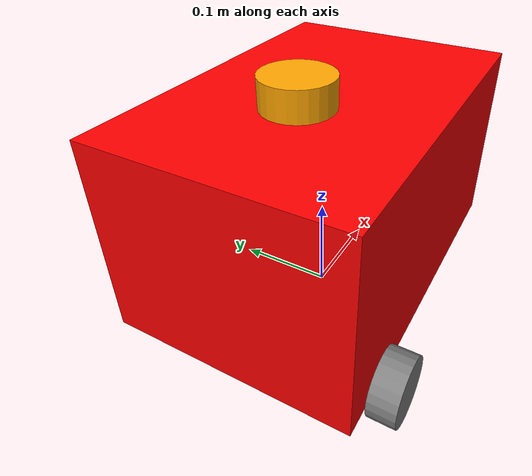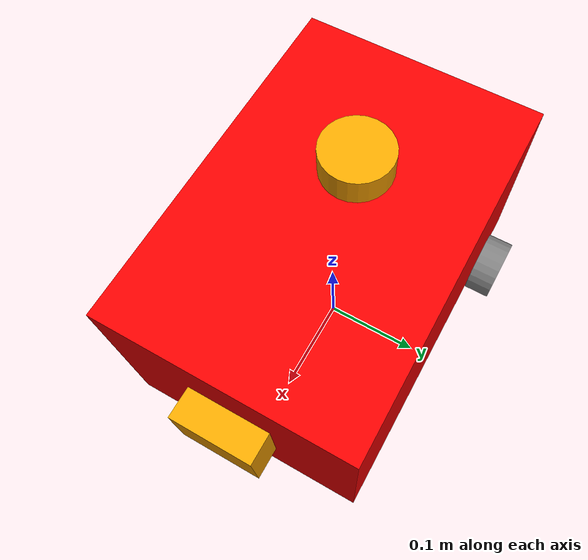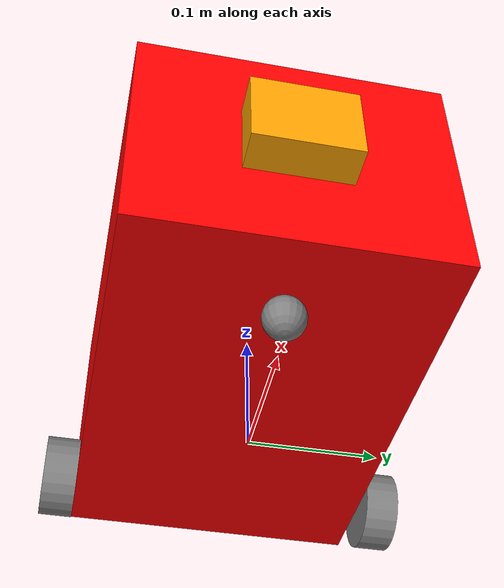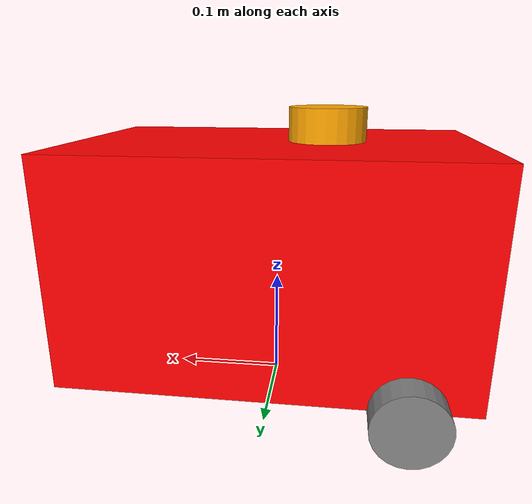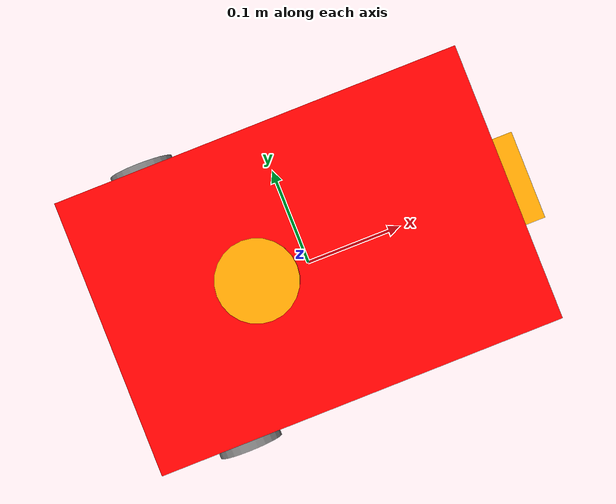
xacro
<?xml version="1.0"?>
<robot name="denis" xmlns:xacro="http://www.ros.org/wiki/xacro">
    <xacro:arg name="use_ros2_control" default="true"/>
    <xacro:arg name="sim_mode" default="false"/>

    <!--Robot and sim with real robot's controlls-->

    <xacro:if value="$(arg use_ros2_control)">
        <xacro:include filename="$(find denis_v1_description)/ros2_control/ros2_control.xacro" />
    </xacro:if>

    <!--Gazebo (never used it actually)-->
    <xacro:unless value="$(arg use_ros2_control)">
        <xacro:include filename="gazebo_control.xacro" />
    </xacro:unless>

    <xacro:include filename="common_properties.xacro" />
    <xacro:include filename="mobile_base.xacro" />
    <xacro:include filename="lidar.xacro" />
    <xacro:include filename="camera.xacro" />
</robot>

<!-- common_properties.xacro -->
<robot xmlns:xacro="http://www.ros.org/wiki/xacro">
    <material name="grey">
        <color rgba="0.5 0.5 0.5 1" />
    </material>

    <material name="red">
        <color rgba="1 0 0 1" />
    </material>

    <material name="orange">
        <color rgba="1 ${165/255} 0 1" />
    </material>

    <xacro:property name="base_length" value="0.6" />
    <xacro:property name="base_width" value="0.4" />
    <xacro:property name="base_height" value="0.2" />
    <xacro:property name="lidar_radius" value="0.1" />
    <xacro:property name="lidar_length" value="0.04" />
    <xacro:property name="wheel_radius" value="0.1" />
    <xacro:property name="wheel_length" value="0.05" />
    <xacro:property name="sphere_front_radius" value="0.05" />

</robot>

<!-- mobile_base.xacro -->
<robot xmlns:xacro="http://www.ros.org/wiki/xacro">

    <xacro:property name="base_length" value="0.36" />
    <xacro:property name="base_width" value="0.245" />
    <xacro:property name="base_height" value="0.2" />
    <xacro:property name="wheel_radius" value="0.0325" />
    <xacro:property name="wheel_length" value="0.027" />
    <xacro:property name="sphere_front_radius" value="${wheel_radius/2}" />

    <xacro:include filename="inertia.xacro" />

    <link name="base_footprint" />

    <link name="base_link">
        <visual>
            <geometry>
                <box size="${base_length} ${base_width} ${base_height}" />
            </geometry>
            <origin xyz="0 0 ${base_height/2}" rpy="0 0 0" />
            <material name="red" />
        </visual>
        <collision>
            <geometry>
                <box size="${base_length} ${base_width} ${base_height}" />
            </geometry>
            <origin xyz="0 0 ${base_height/2}" rpy="0 0 0" />
        </collision>
        <xacro:box_inertia m="5" x="${base_length}" y="${base_width}" z="${base_height}"
            o_xyz="0 0 ${base_height/2}" o_rpy="0 0 0" />
    </link>

    <link name="left_wheel_link">
        <visual>
            <geometry>
                <cylinder radius="${wheel_radius}" length="${wheel_length}" />
            </geometry>
            <origin xyz="0 0 0" rpy="${pi / 2.0} 0 0" />
            <material name="grey" />
        </visual>
        <collision>
            <geometry>
                <cylinder radius="${wheel_radius}" length="${wheel_length}" />
            </geometry>
            <origin xyz="0 0 0" rpy="${pi / 2.0} 0 0" />
        </collision>
        <xacro:cylinder_inertia m="0.010" radius="${wheel_radius}"
            length="${wheel_length}" o_xyz="0 0 0" o_rpy="${pi / 2.0} 0 0" />
    </link>

    <link name="right_wheel_link">
        <visual>
            <geometry>
                <cylinder radius="${wheel_radius}" length="${wheel_length}" />
            </geometry>
            <origin xyz="0 0 0" rpy="${pi / 2.0} 0 0" />
            <material name="grey" />
            <xacro:cylinder_inertia m="1" radius="${wheel_radius}"
                length="${wheel_length}" o_xyz="0 0 0" o_rpy="${pi / 2.0} 0 0" />
        </visual>
        <collision>
            <geometry>
                <cylinder radius="${wheel_radius}" length="${wheel_length}" />
            </geometry>
            <origin xyz="0 0 0" rpy="${pi / 2.0} 0 0" />
        </collision>
        <xacro:cylinder_inertia m="0.010" radius="${wheel_radius}"
            length="${wheel_length}" o_xyz="0 0 0" o_rpy="${pi / 2.0} 0 0" />
    </link>

    <link name="caster_wheel_link">
        <visual>
            <geometry>
                <sphere radius="${sphere_front_radius}" />
            </geometry>
            <material name="grey" />
            <origin xyz="0 0 0" rpy="0 0 0" />
        </visual>
        <collision>
            <geometry>
                <sphere radius="${sphere_front_radius}" />
            </geometry>
            <origin xyz="0 0 0" rpy="0 0 0" />
        </collision>
        <xacro:sphere_inertia m="0.010" r="${sphere_front_radius}" o_xyz="0 0 0" o_rpy="0 0 0" />
    </link>

    <joint name="base_footprint_base_joint" type="fixed">
        <parent link="base_footprint" />
        <child link="base_link" />
        <origin xyz="0 0 ${wheel_radius}" rpy="0 0 0" />
    </joint>

    <joint name="base_caster_wheel_joint" type="fixed">
        <parent link="base_link" />
        <child link="caster_wheel_link" />
        <origin xyz="${base_width/2} 0 -${sphere_front_radius}" rpy="0 0 0" />
    </joint>

    <joint name="base_left_wheel_joint" type="continuous">
        <parent link="base_link" />
        <child link="left_wheel_link" />
        <origin xyz="-${base_length/3} ${base_width/2 + wheel_length/2} 0" rpy="0 0 0" />
        <axis xyz="0 1 0" />
    </joint>

    <joint name="base_right_wheel_joint" type="continuous">
        <parent link="base_link" />
        <child link="right_wheel_link" />
        <origin xyz="-${base_length/3} -${base_width/2 + wheel_length/2} 0" rpy="0 0 0" />
        <axis xyz="0 1 0" />
    </joint>

    <gazebo reference="caster_wheel_link">
        <mu1 value="0.001"/>
        <mu2 value="0.001"/>
    </gazebo>

</robot>

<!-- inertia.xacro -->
<robot xmlns:xacro="http://www.ros.org/wiki/xacro">
    <xacro:macro name="cylinder_inertia" params="m radius length o_xyz o_rpy">
        <inertial>
            <mass value="${m}" />
            <origin xyz="${o_xyz}" rpy="${o_rpy}" />
            <inertia
                ixx="${(m / 12) * (3 * radius * radius + length * length)}"
                ixy="0" ixz="0"
                iyy="${(m / 12) * (3 * radius * radius + length * length)}"
                iyz="0"
                izz="${(m * radius * radius) / 2}" />
        </inertial>
    </xacro:macro>

    <xacro:macro name="sphere_inertia" params="m r o_xyz o_rpy">
        <inertial>
            <mass value="${m}" />
            <origin xyz="${o_xyz}" rpy="${o_rpy}" />
            <inertia ixx="${(2/5) * m * r * r}" ixy="0" ixz="0"
                iyy="${(2/5) * m * r * r}" iyz="0"
                izz="${(2/5) * m * r * r}" />
        </inertial>
    </xacro:macro>

    <xacro:macro name="box_inertia" params="m x y z o_xyz o_rpy">
        <inertial>
            <origin xyz="${o_xyz}" rpy="${o_rpy}" />
            <mass value="${m}" />
            <inertia
                ixx="${(m/12) * (y*y + z*z)}"
                ixy="0.0" ixz="0.0"
                iyy="${(m/12) * (x*x + z*z)}"
                iyz="0.0"
                izz="${(m/12) * (x*x + y*y)}" />
        </inertial>
    </xacro:macro>
</robot>

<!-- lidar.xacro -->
<robot xmlns:xacro="http://www.ros.org/wiki/xacro">

    <xacro:property name="lidar_radius" value="0.035" />
    <xacro:property name="lidar_length" value="0.03" />

    <link name="lidar_link">
        <visual>
            <geometry>
                <cylinder radius="${lidar_radius}" length="${lidar_length}" />
            </geometry>
            <material name="orange" />
            <origin xyz="0 0 0" rpy="0 0 0" />
        </visual>
        <collision>
            <geometry>
                <cylinder radius="${lidar_radius}" length="${lidar_length}" />
            </geometry>
            <origin xyz="0 0 0" rpy="0 0 0" />
        </collision>
        <xacro:cylinder_inertia m="1" radius="${lidar_radius}"
            length="${lidar_length}" o_xyz="0 0 0" o_rpy="0 0 0" />
    </link>

    <joint name="base_base_scan_joint" type="fixed">
        <parent link="base_link" />
        <child link="lidar_link" />
        <origin xyz="-${base_length/8} 0 ${base_height + lidar_length/2.0}" rpy="0 0 0" />
    </joint>

    <gazebo reference="lidar_link">
        <sensor name="lidar" type="gpu_lidar">
            <gz_frame_id>lidar_link</gz_frame_id>
            <always_on>true</always_on>
            <visualize>true</visualize>
            <update_rate>5</update_rate>
            <topic>/scan</topic>
            <ray>
                <scan>
                    <horizontal>
                        <samples>360</samples>
                        <resolution>1.000000</resolution>
                        <min_angle>0.000000</min_angle>
                        <max_angle>6.280000</max_angle>
                    </horizontal>
                    <vertical>
                        <samples>1</samples>
                        <resolution>0.01</resolution>
                        <min_angle>0</min_angle>
                        <max_angle>0</max_angle>
                    </vertical>
                </scan>
                <range>
                    <min>0.120000</min>
                    <max>3.5</max>
                    <resolution>0.015000</resolution>
                </range>
                <noise>
                    <type>gaussian</type>
                    <mean>0.0</mean>
                    <stddev>0.01</stddev>
                </noise>
            </ray>
        </sensor>
    </gazebo>
</robot>

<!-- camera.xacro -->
<robot xmlns:xacro="http://www.ros.org/wiki/xacro">

    <xacro:property name="camera_length" value="0.03" />
    <xacro:property name="camera_width" value="${base_width / 3}" />
    <xacro:property name="camera_height" value="${base_height / 3}" />
    <xacro:include filename="inertia.xacro" />

    <link name="camera_link">
        <visual>
            <geometry>
                <box size="${camera_length} ${camera_width} ${camera_height}" />
            </geometry>
            <origin xyz="0 0 0" rpy="0 0 0" />
            <material name="orange" />
        </visual>
        <collision>
            <geometry>
                <box size="${camera_length} ${camera_width} ${camera_height}" />
            </geometry>
            <origin xyz="0 0 0" rpy="0 0 0" />
        </collision>
        <xacro:box_inertia m="0.1" x="${camera_length}" y="${camera_width}" z="${camera_height}"
            o_xyz="0 0 0" o_rpy="0 0 0" />
    </link>

    <joint name="base_camera_joint" type="fixed">
        <parent link="base_link" />
        <child link="camera_link" />
        <origin xyz="${base_length / 2.0 + camera_length / 2.0} 0 ${base_height / 2.0}" rpy="0 0 0" />
    </joint>

    <link name="camera_link_optical" />

    <joint name="camera_depth_joint" type="fixed">
        <origin xyz="0 0 0" rpy="${-pi/2} 0 ${-pi/2}" />
        <parent link="camera_link" />
        <child link="camera_link_optical" />
    </joint>

    <gazebo reference="camera_link">
        <sensor name="depth_camera" type="rgbd_camera">
            <always_on>true</always_on>
            <visualize>true</visualize>
            <update_rate>5.0</update_rate>
            <topic>depth_camera</topic>
            <gz_frame_id>camera_link</gz_frame_id>
            <camera>
                <horizontal_fov>1.047198</horizontal_fov>
                <image>
                    <width>640</width>
                    <height>480</height>
                </image>
                <clip>
                    <near>0.05</near>
                    <far>3</far>
                </clip>
            </camera>
            <baseline>0.2</baseline>
            <pointCloudCutoff>0.5</pointCloudCutoff>
            <pointCloudCutoffMax>3.0</pointCloudCutoffMax>
            <distortionK1>0</distortionK1>
            <distortionK2>0</distortionK2>
            <distortionK3>0</distortionK3>
            <distortionT1>0</distortionT1>
            <distortionT2>0</distortionT2>
            <CxPrime>0</CxPrime>
            <Cx>0</Cx>
            <Cy>0</Cy>
            <focalLength>0</focalLength>
            <hackBaseline>0</hackBaseline>
        </sensor>
    </gazebo>

</robot>
